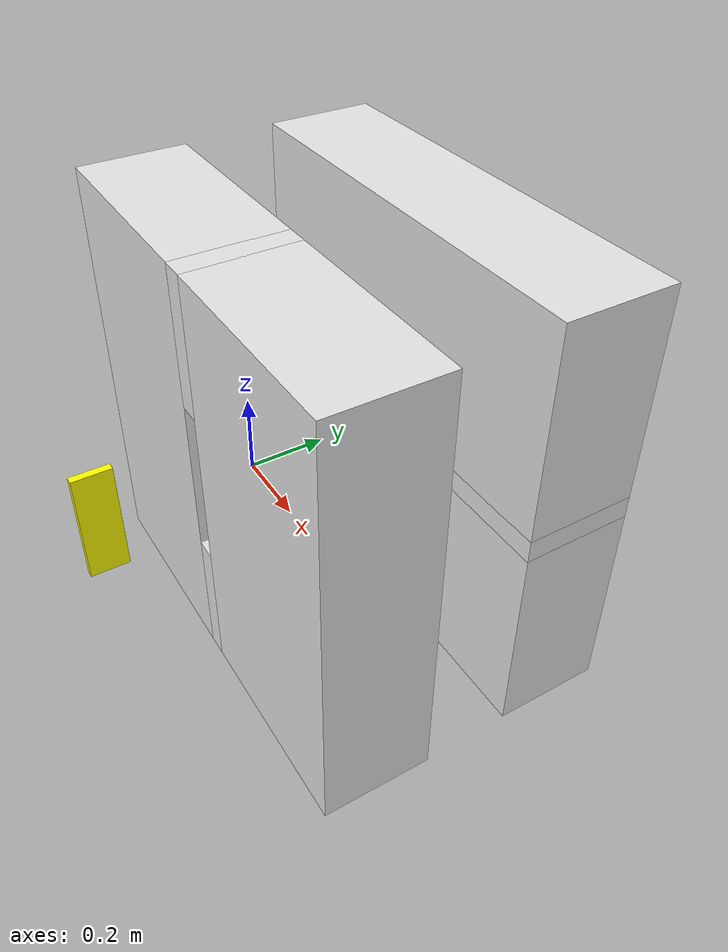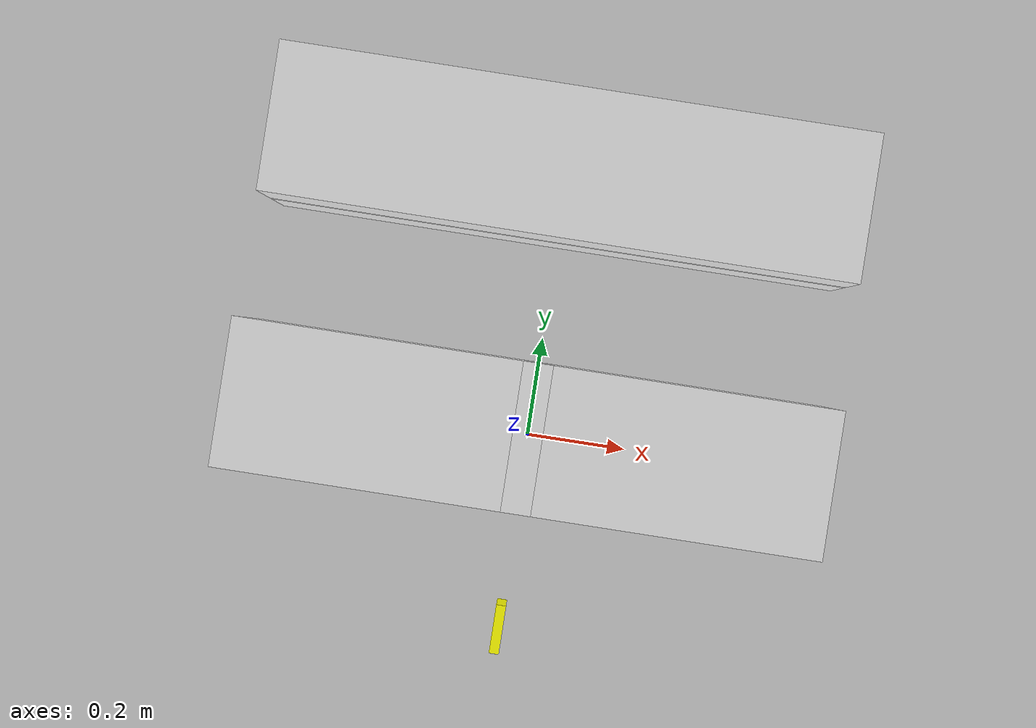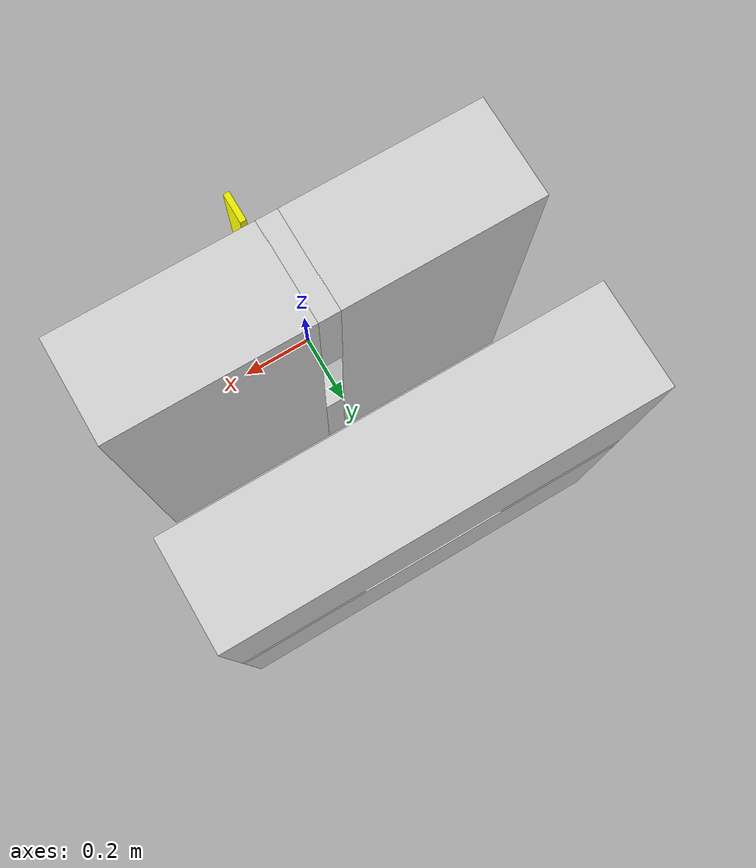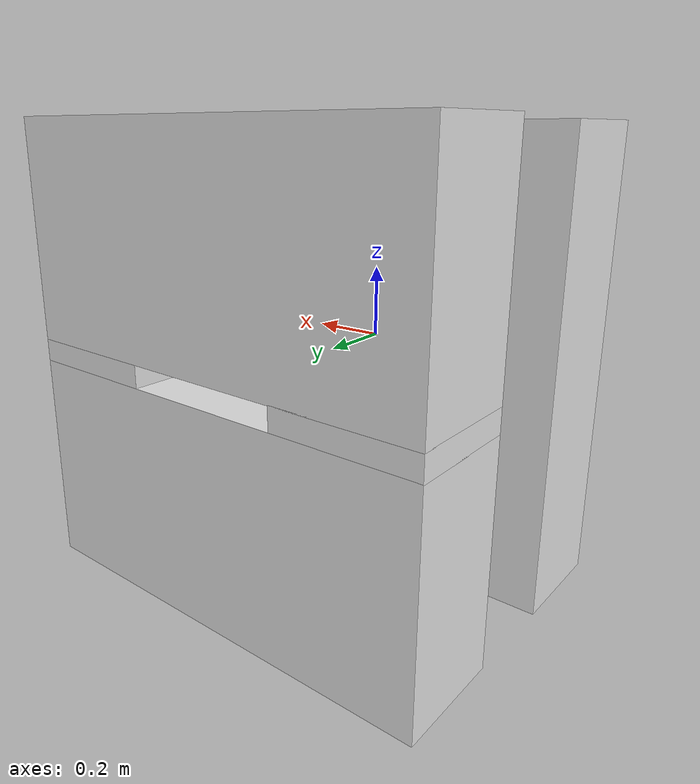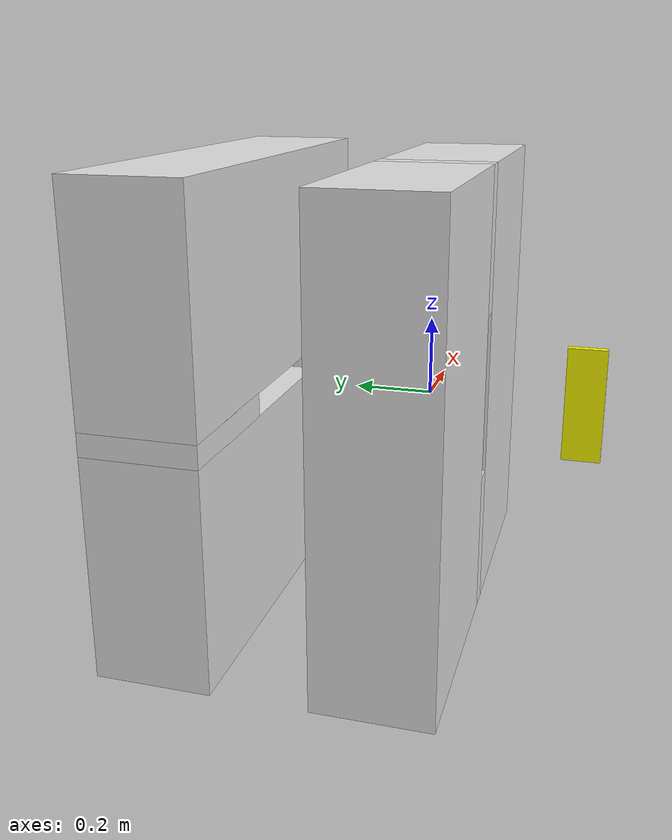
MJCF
<mujoco model="block_insertion">

    <compiler inertiafromgeom="true" angle="radian" coordinate="local" />
    <option timestep="0.01" gravity="0 0 0" iterations="20" integrator="Euler" />
    <default>
        <joint armature="0.1" damping="1" limited="false" />
        <geom friction=".5 .1 .1" margin="0" condim="3" contype="0" conaffinity="0" />
    </default>

    <worldbody>

        <body name="block" pos="0 -0.4 0">
            <geom name="block_geom" rgba="1 1 0 1" type="box" size="0.01 0.05 0.15" contype="1" conaffinity="1" />
            <joint name="block_x" type="slide" pos="0 0 0" axis="1 0 0" limited="true" range="-0.25 0.25" />
            <joint name="block_y" type="slide" pos="0 0 0" axis="0 1 0" limited="true" range="0 1.3" />
            <joint name="block_z" type="slide" pos="0 0 0" axis="0 0 1" limited="true" range="-0.25 0.25" />
            <joint name="block_rotate_1" type="hinge" pos="0 0 0" axis="0 1 0" limited="true" range="-3.1416 3.1416" />
        </body>

        <body name="block_target" pos="0 -0.4 0">
            <geom name="block_target_geom" rgba="0 1 0 1" type="box" size="0.01 0.05 0.15" contype="0" conaffinity="0" />
            <joint name="block_target_x" armature="0" damping="0" type="slide" pos="0 0 0" axis="1 0 0" limited="true" range="-0.25 0.25" />
            <joint name="block_target_y" armature="0" damping="0" type="slide" pos="0 0 0" axis="0 1 0" limited="true" range="0 1.3" />
            <joint name="block_target_z" armature="0" damping="0" type="slide" pos="0 0 0" axis="0 0 1" limited="true" range="-0.25 0.25" />
            <joint name="block_target_rotate_1" armature="0" damping="0" type="hinge" pos="0 0 0" axis="0 1 0" limited="true" range="-3.1416 3.1416" />
        </body>

        <body name="w1_1" pos="0.32 0 0">
            <geom name="w1_1" rgba="0.9 0.9 0.9 1" type="box" size="0.29 0.15 0.6" contype="1" conaffinity="1" />
        </body>

        <body name="w1_2" pos="-0.32 0 0">
            <geom name="w1_2" rgba="0.9 0.9 0.9 1" type="box" size="0.29 0.15 0.6" contype="1" conaffinity="1" />
        </body>

        <body name="w1_3" pos="0.0 0 0.41">
            <geom name="w1_3" rgba="0.9 0.9 0.9 1" type="box" size="0.032 0.15 0.19" contype="1" conaffinity="1" />
        </body>

        <body name="w1_4" pos="0.0 0 -0.41">
            <geom name="w1_4" rgba="0.9 0.9 0.9 1" type="box" size="0.032 0.15 0.19" contype="1" conaffinity="1" />
        </body>

        <body name="w2_1" pos="0 0.55 0.32">
            <geom name="w2_1" rgba="0.9 0.9 0.9 1" type="box" size="0.6 0.15 0.29" contype="1" conaffinity="1" />
        </body>

        <body name="w2_2" pos="0 0.55 -0.32">
            <geom name="w2_2" rgba="0.9 0.9 0.9 1" type="box" size="0.6 0.15 0.29" contype="1" conaffinity="1" />
        </body>

        <body name="w2_3" pos="0.41 0.55 0.0">
            <geom name="w2_3" rgba="0.9 0.9 0.9 1" type="box" size="0.19 0.15 0.032" contype="1" conaffinity="1" />
        </body>

        <body name="w2_4" pos="-0.41 0.55 0.0">
            <geom name="w2_4" rgba="0.9 0.9 0.9 1" type="box" size="0.19 0.15 0.032" contype="1" conaffinity="1" />
        </body>

    </worldbody>

    <actuator>
        <motor joint="block_x" ctrlrange="-2.0 2.0" ctrllimited="true" />
        <motor joint="block_y" ctrlrange="-2.0 2.0" ctrllimited="true" />
        <motor joint="block_z" ctrlrange="-2.0 2.0" ctrllimited="true" />
        <general joint="block_rotate_1" ctrlrange="-2.0 2.0" ctrllimited="true" gainprm="8 0 0" />
    </actuator>

</mujoco>
